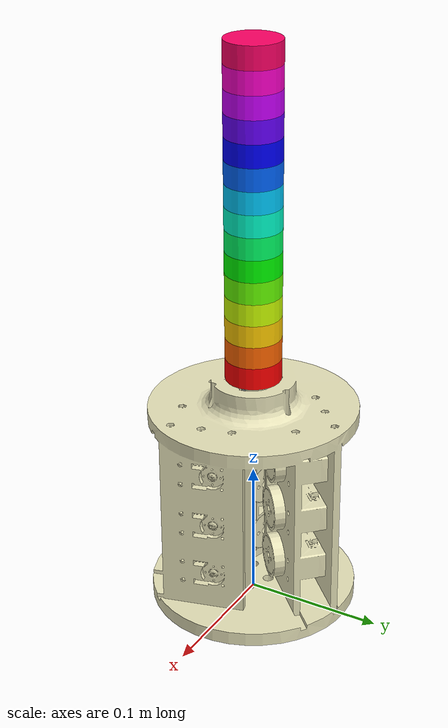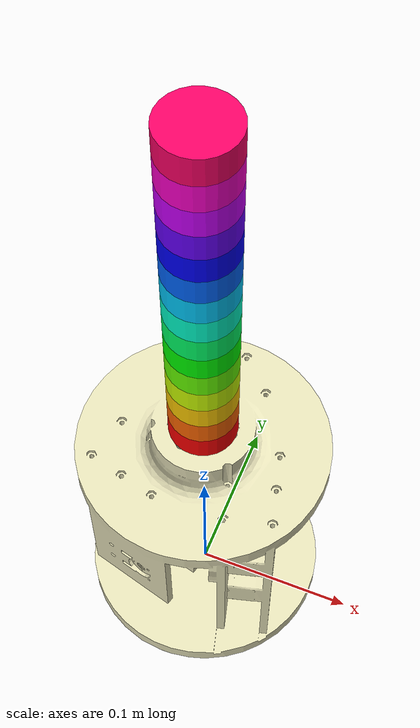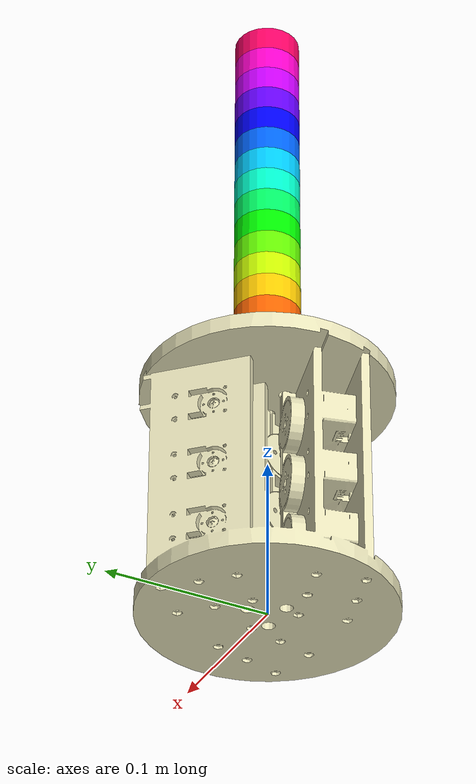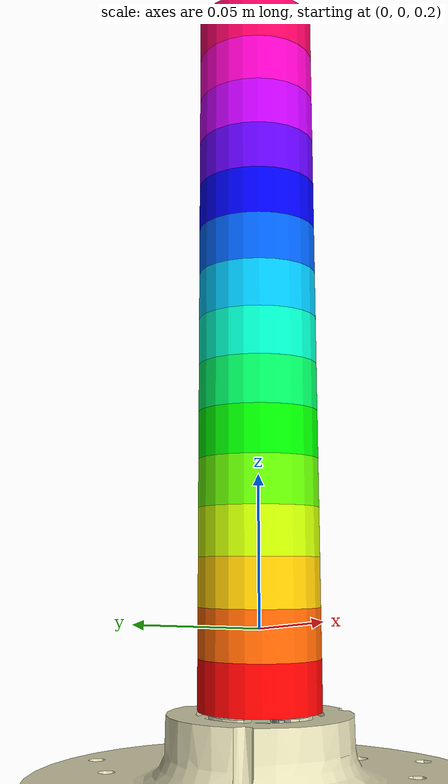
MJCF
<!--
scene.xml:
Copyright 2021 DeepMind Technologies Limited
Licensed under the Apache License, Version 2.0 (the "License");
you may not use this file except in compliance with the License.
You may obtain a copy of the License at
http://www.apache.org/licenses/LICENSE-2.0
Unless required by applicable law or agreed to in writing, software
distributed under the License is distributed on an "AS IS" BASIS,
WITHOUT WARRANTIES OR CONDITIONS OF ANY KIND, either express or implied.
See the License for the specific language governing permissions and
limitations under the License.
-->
<?xml version="1.0"?>
<mujoco model="TDCR">

  <visual>
    <global offwidth="1280" offheight="720"/>
  </visual>

  <include file="scene.xml"/>

  <option timestep="0.002" gravity="0 0 -9.81"/>

  <asset>
    <mesh name="base_mesh" file="base.stl"/>
  </asset>

  <default>
    <geom density="25" friction="0.8 0.1 0.1" rgba="0.6 0.6 0.9 1"/>
    <joint damping="0.1" armature="0.01" limited="false"/>
    <site  size="0.002" rgba="1 0.4 0.4 1"/>
  </default>

  <worldbody>
    <camera name="camera1" pos="0.000 -0.600 0.320" quat="0.77334 0.63399 -0.00000 -0.00000" fovy="45"/>
    <camera name="camera2" pos="0.000 0.600 0.320" quat="-0.00000 0.00000 0.63399 0.77334" fovy="45"/>
    <camera name="camera3" pos="0.600 0.000 0.320" quat="0.54684 0.44830 0.44830 0.54684" fovy="45"/>
    <camera name="camera4" pos="-0.600 0.000 0.320" quat="-0.54684 -0.44830 0.44830 0.54684" fovy="45"/>
    <camera name="camera5" pos="0.424 0.424 0.320" quat="0.29595 0.24262 0.58573 0.71448" fovy="45"/>
    <camera name="camera6" pos="-0.424 0.424 0.320" quat="0.29595 0.24262 -0.58573 -0.71448" fovy="45"/>
    <camera name="camera7" pos="-0.424 -0.424 0.320" quat="0.71448 0.58573 -0.24262 -0.29595" fovy="45"/>
    <camera name="camera8" pos="0.424 -0.424 0.320" quat="0.71448 0.58573 0.24262 0.29595" fovy="45"/>

    <body name="base" pos="0 0 0.174">
      <!-- Light yellow base; 174 mm above ground. Put the offset in the body pos, not the geom. -->
      <geom type="mesh" mesh="base_mesh" rgba="0.902 0.886 0.725 1.0" contype="0" conaffinity="0" group="1"/>
      <site name="b00" pos=" 0.0125  0         -0.0085"/>
      <site name="b01" pos="-0.00625  0.010825 -0.0085"/>
      <site name="b02" pos="-0.00625 -0.010825 -0.0085"/>

      <!-- ===== DISC0 (fixed) ===== -->
      <!-- Ball joint here is optional; disc0 is effectively immobile. Under tendon actuation, only the upper section is actuated. -->
      <!-- In the geom, size controls half-height (half thickness). Adjust the joint position via the body's pos. -->
      <body name="disc0" pos="0 0 0.00895">
        <joint name="ball0" type="ball"/>
        <geom type="cylinder" size="0.02 0.008" contype="0" conaffinity="0" rgba="1.0 0.0 0.0 1.0" group="1"/>
        <site name="s00" pos=" 0.0125  0         0"/>
        <site name="s01" pos="-0.00625  0.010825 0"/>
        <site name="s02" pos="-0.00625 -0.010825 0"/>

        <!-- ===== DISC1 ===== -->
        <body name="disc1" pos="0 0 0.016">
          <joint name="ball1" type="ball"/>
          <geom type="cylinder" size="0.02 0.008" contype="0" conaffinity="0" rgba="1.0 0.4 0.0 1.0" group="1"/>
          <site name="s10" pos=" 0.0125  0         0"/>
          <site name="s11" pos="-0.00625  0.010825 0"/>
          <site name="s12" pos="-0.00625 -0.010825 0"/>

          <!-- ===== DISC2 ===== -->
          <body name="disc2" pos="0 0 0.016">
            <joint name="ball2" type="ball"/>
            <geom type="cylinder" size="0.02 0.008" contype="0" conaffinity="0" rgba="1.0 0.8 0.0 1.0" group="1"/>
            <site name="s20" pos=" 0.0125  0         0"/>
            <site name="s21" pos="-0.00625  0.010825 0"/>
            <site name="s22" pos="-0.00625 -0.010825 0"/>

            <!-- ===== DISC3 ===== -->
            <body name="disc3" pos="0 0 0.016">
              <joint name="ball3" type="ball"/>
              <geom type="cylinder" size="0.02 0.008" contype="0" conaffinity="0" rgba="0.8 1.0 0.0 1.0" group="1"/>
              <site name="s30" pos=" 0.0125  0         0"/>
              <site name="s31" pos="-0.00625  0.010825 0"/>
              <site name="s32" pos="-0.00625 -0.010825 0"/>

              <!-- ===== DISC4 ===== -->
              <body name="disc4" pos="0 0 0.016">
                <joint name="ball4" type="ball"/>
                <geom type="cylinder" size="0.02 0.008" contype="0" conaffinity="0" rgba="0.4 1.0 0.0 1.0" group="1"/>
                <site name="s40" pos=" 0.0125  0         0"/>
                <site name="s41" pos="-0.00625  0.010825 0"/>
                <site name="s42" pos="-0.00625 -0.010825 0"/>

                <!-- ===== DISC5 (interface between lower & upper) ===== -->
                <body name="disc5" pos="0 0 0.016">
                  <joint name="ball5" type="ball"/>
                  <geom type="cylinder" size="0.02 0.008" contype="0" conaffinity="0" rgba="0.0 1.0 0.0 1.0" group="1"/>
                  <site name="s50" pos=" 0.0125  0         0"/>
                  <site name="s51" pos="-0.00625  0.010825 0"/>
                  <site name="s52" pos="-0.00625 -0.010825 0"/>

                  <!-- ===== DISC6 ===== -->
                  <body name="disc6" pos="0 0 0.016">
                    <joint name="ball6" type="ball"/>
                    <geom type="cylinder" size="0.02 0.008" contype="0" conaffinity="0" rgba="0.0 1.0 0.4 1.0" group="1"/>
                    <site name="s60" pos=" 0.0125  0         0"/>
                    <site name="s61" pos="-0.00625  0.010825 0"/>
                    <site name="s62" pos="-0.00625 -0.010825 0"/>

                    <!-- ===== DISC7 ===== -->
                    <body name="disc7" pos="0 0 0.016">
                      <joint name="ball7" type="ball"/>
                      <geom type="cylinder" size="0.02 0.008" contype="0" conaffinity="0" rgba="0.0 1.0 0.8 1.0" group="1"/>
                      <site name="s70" pos=" 0.0125  0         0"/>
                      <site name="s71" pos="-0.00625  0.010825 0"/>
                      <site name="s72" pos="-0.00625 -0.010825 0"/>

                      <!-- ===== DISC8 ===== -->
                      <body name="disc8" pos="0 0 0.016">
                        <joint name="ball8" type="ball"/>
                        <geom type="cylinder" size="0.02 0.008" contype="0" conaffinity="0" rgba="0.0 0.8 1.0 1.0" group="1"/>
                        <site name="s80" pos=" 0.0125  0         0"/>
                        <site name="s81" pos="-0.00625  0.010825 0"/>
                        <site name="s82" pos="-0.00625 -0.010825 0"/>

                        <!-- ===== DISC9 (TIP) ===== -->
                        <body name="disc9" pos="0 0 0.016">
                          <joint name="ball9" type="ball"/>
                          <geom type="cylinder" size="0.02 0.008" contype="0" conaffinity="0" rgba="0.0 0.4 1.0 1.0" group="1"/>
                          <site name="s90" pos=" 0.0125  0         0"/>
                          <site name="s91" pos="-0.00625  0.010825 0"/>
                          <site name="s92" pos="-0.00625 -0.010825 0"/>

                          <!-- ===== DISC10 (TIP) ===== -->
                          <body name="disc10" pos="0 0 0.016">
                            <joint name="ball10" type="ball"/>
                            <geom type="cylinder" size="0.02 0.008" contype="0" conaffinity="0" rgba="0.0 0.0 1.0 1.0" group="1"/>
                            <site name="s100" pos=" 0.0125  0         0"/>
                            <site name="s101" pos="-0.00625  0.010825 0"/>
                            <site name="s102" pos="-0.00625 -0.010825 0"/>

                            <!-- ===== DISC11 (TIP) ===== -->
                            <body name="disc11" pos="0 0 0.016">
                              <joint name="ball11" type="ball"/>
                              <geom type="cylinder" size="0.02 0.008" contype="0" conaffinity="0" rgba="0.4 0.0 1.0 1.0" group="1"/>
                              <site name="s110" pos=" 0.0125  0         0"/>
                              <site name="s111" pos="-0.00625  0.010825 0"/>
                              <site name="s112" pos="-0.00625 -0.010825 0"/>

                              <!-- ===== DISC12 (TIP) ===== -->
                              <body name="disc12" pos="0 0 0.016">
                                <joint name="ball12" type="ball"/>
                                <geom type="cylinder" size="0.02 0.008" contype="0" conaffinity="0" rgba="0.8 0.0 1.0 1.0" group="1"/>
                                <site name="s120" pos=" 0.0125  0         0"/>
                                <site name="s121" pos="-0.00625  0.010825 0"/>
                                <site name="s122" pos="-0.00625 -0.010825 0"/>

                                <!-- ===== DISC13 (TIP) ===== -->
                                <body name="disc13" pos="0 0 0.016">
                                  <joint name="ball13" type="ball"/>
                                  <geom type="cylinder" size="0.02 0.008" contype="0" conaffinity="0" rgba="1.0 0.0 0.8 1.0" group="1"/>
                                  <site name="s130" pos=" 0.0125  0         0"/>
                                  <site name="s131" pos="-0.00625  0.010825 0"/>
                                  <site name="s132" pos="-0.00625 -0.010825 0"/>

                                  <!-- ===== DISC14 (TIP) ===== -->
                                  <body name="disc14" pos="0 0 0.016">
                                    <joint name="ball14" type="ball"/>
                                    <geom type="cylinder" size="0.02 0.008" contype="0" conaffinity="0" rgba="1.0 0.0 0.4 1.0" group="1"/>
                                    <site name="s140" pos=" 0.0125  0         0"/>
                                    <site name="s141" pos="-0.00625  0.010825 0"/>
                                    <site name="s142" pos="-0.00625 -0.010825 0"/>

                                  </body><!-- disc14 end -->
                                </body><!-- disc13 end -->
                              </body><!-- disc12 end -->
                            </body><!-- disc11 end -->
                          </body><!-- disc10 end -->
                        </body><!-- disc9 end -->
                      </body><!-- disc8 end -->
                    </body><!-- disc7 end -->
                  </body><!-- disc6 end -->
                </body><!-- disc5 end -->
              </body><!-- disc4 end -->
            </body><!-- disc3 end -->
          </body><!-- disc2 end -->
        </body><!-- disc1 end -->
      </body><!-- disc0 end -->
    </body><!-- base end -->
  </worldbody>

  <tendon>
    <spatial name="tendon1">
      <site site="b00"/><site site="s00"/><site site="s10"/><site site="s20"/><site site="s30"/><site site="s40"/>
    </spatial>
    <spatial name="tendon2">
      <site site="b01"/><site site="s01"/><site site="s11"/><site site="s21"/><site site="s31"/><site site="s41"/>
    </spatial>
    <spatial name="tendon3">
      <site site="b02"/><site site="s02"/><site site="s12"/><site site="s22"/><site site="s32"/><site site="s42"/>
    </spatial>

    <spatial name="tendon4">
      <site site="s40"/><site site="s50"/><site site="s60"/><site site="s70"/><site site="s80"/><site site="s90"/>
    </spatial>
    <spatial name="tendon5">
      <site site="s41"/><site site="s51"/><site site="s61"/><site site="s71"/><site site="s81"/><site site="s91"/>
    </spatial>
    <spatial name="tendon6">
      <site site="s42"/><site site="s52"/><site site="s62"/><site site="s72"/><site site="s82"/><site site="s92"/>
    </spatial>

    <spatial name="tendon7">
      <site site="s90"/><site site="s100"/><site site="s110"/><site site="s120"/><site site="s130"/><site site="s140"/>
    </spatial>
    <spatial name="tendon8">
      <site site="s91"/><site site="s101"/><site site="s111"/><site site="s121"/><site site="s131"/><site site="s141"/>
    </spatial>
    <spatial name="tendon9">
      <site site="s92"/><site site="s102"/><site site="s112"/><site site="s122"/><site site="s132"/><site site="s142"/>
    </spatial>

  </tendon>

  <actuator>
    <!-- lower motors control discs 0-4 -->
    <position name="motor1" tendon="tendon1" kp="500" ctrlrange="0 0.04"/>
    <position name="motor2" tendon="tendon2" kp="500" ctrlrange="0 0.04"/>
    <position name="motor3" tendon="tendon3" kp="500" ctrlrange="0 0.04"/>

    <!-- middle motors control discs 5-9 -->
    <position name="motor4" tendon="tendon4" kp="500" ctrlrange="0 0.04"/>
    <position name="motor5" tendon="tendon5" kp="500" ctrlrange="0 0.04"/>
    <position name="motor6" tendon="tendon6" kp="500" ctrlrange="0 0.04"/>

    <!-- upper motors control discs 5-9 -->
    <position name="motor7" tendon="tendon7" kp="500" ctrlrange="0 0.04"/>
    <position name="motor8" tendon="tendon8" kp="500" ctrlrange="0 0.04"/>
    <position name="motor9" tendon="tendon9" kp="500" ctrlrange="0 0.04"/>
  </actuator>

</mujoco>

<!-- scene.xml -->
<mujoco>
  <compiler meshdir="asset" texturedir="asset"/>

  <statistic meansize=".05"/>

  <visual>
    <rgba haze="0.15 0.25 0.35 1"/>
    <quality shadowsize="4096"/>
    <map stiffness="700" shadowscale="0.5" fogstart="1" fogend="15" zfar="40" haze="1"/>
  </visual>

  <asset>
    <texture type="skybox" builtin="gradient" rgb1="0.3 0.5 0.7" rgb2="0 0 0" width="512" height="512"/>
    <texture name="texplane" type="2d" builtin="checker" rgb1=".2 .3 .4" rgb2=".1 0.15 0.2"
      width="512" height="512" mark="cross" markrgb=".8 .8 .8"/>

    <material name="matplane" reflectance="0.3" texture="texplane" texrepeat="10 10" texuniform="true"/>
  </asset>

  <worldbody>
    <light diffuse=".4 .4 .4" specular="0.1 0.1 0.1" pos="0 0 2.0" dir="0 0 -1" castshadow="false"/>
    <light directional="true" diffuse=".8 .8 .8" specular="0.2 0.2 0.2" pos="0 0 4" dir="0 0 -1"/>

  </worldbody>
</mujoco>
